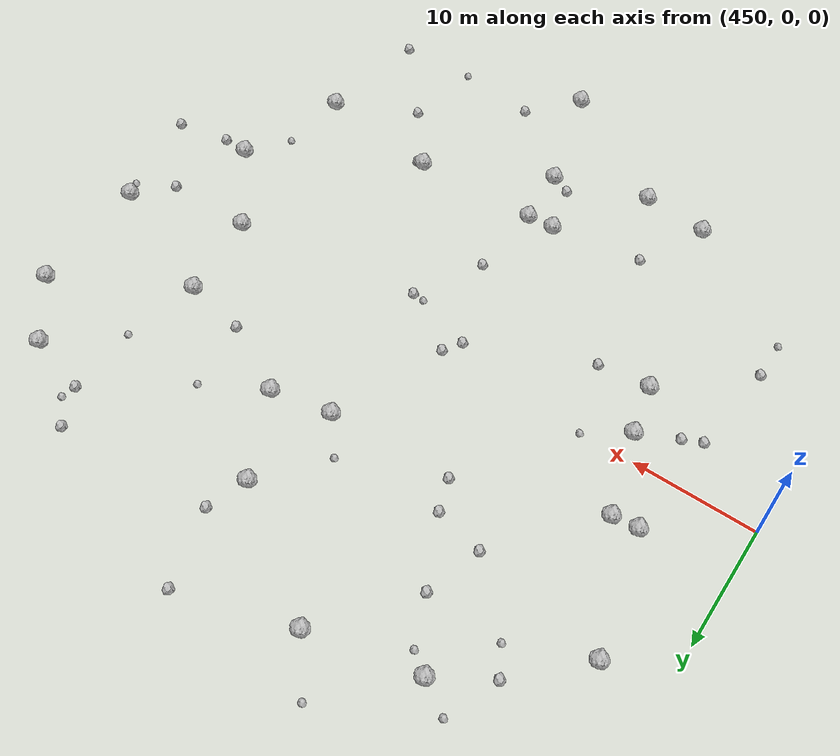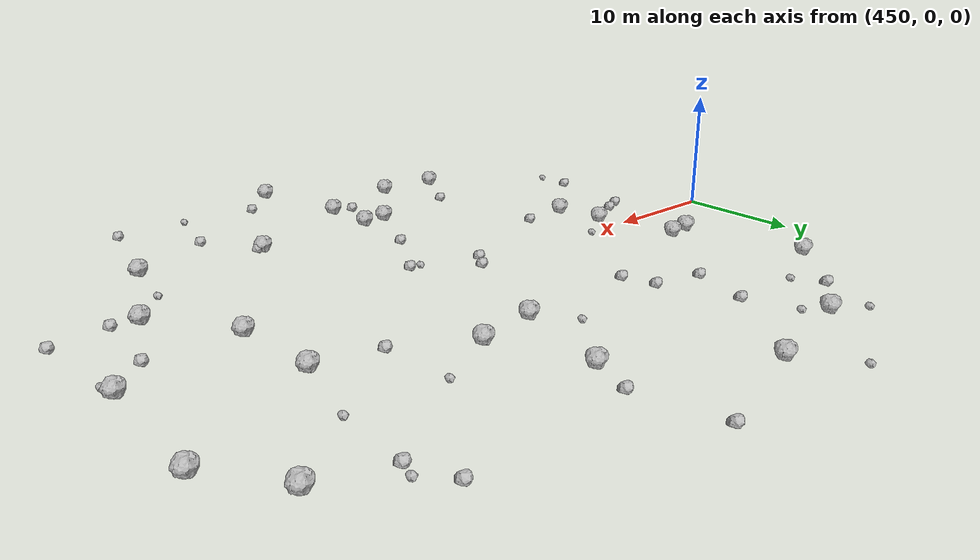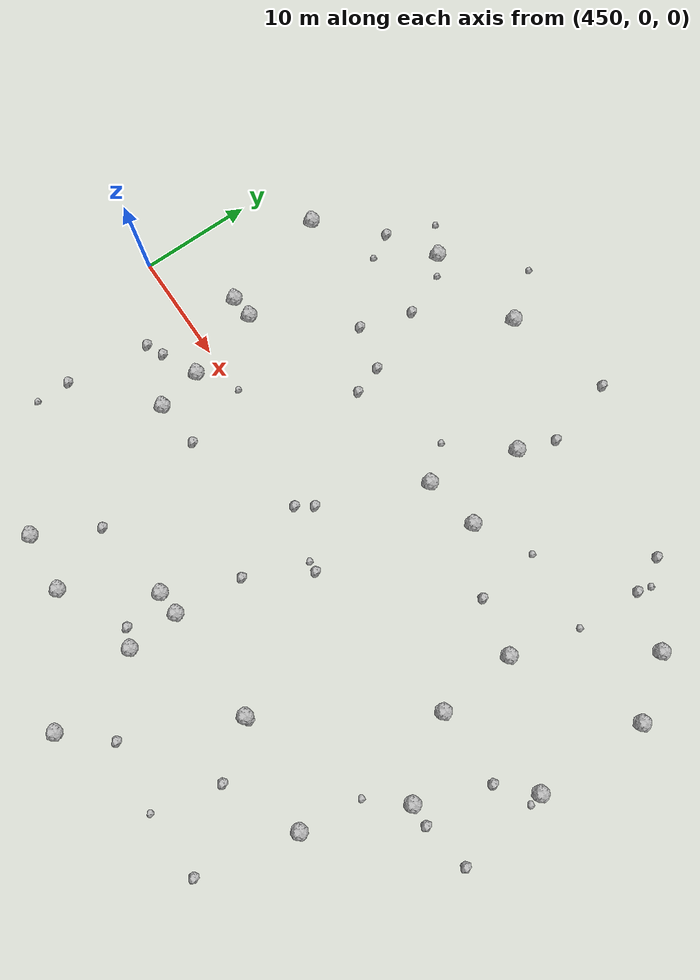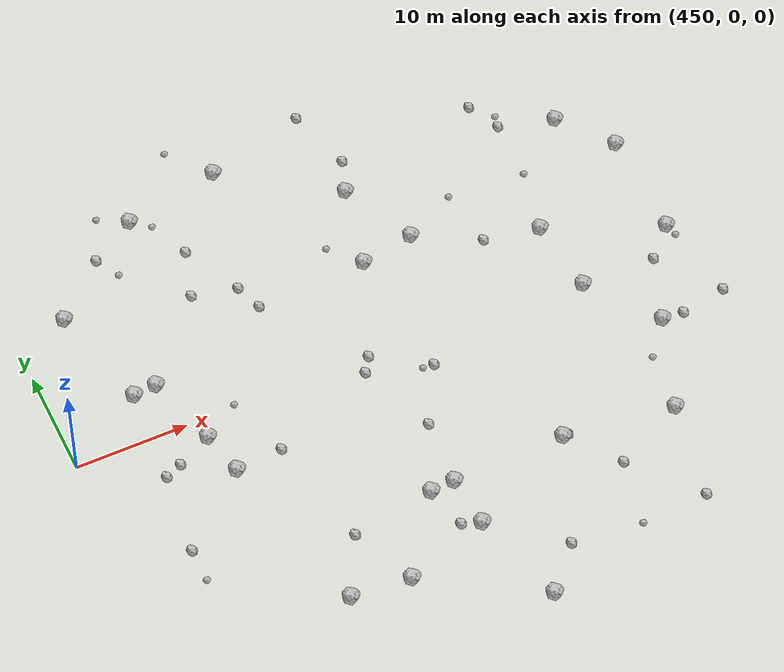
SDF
<sdf version="1.6">
 <world name="default">
  <include><uri>model://sun</uri></include>
  <model name="rock1_12_3">
   <include><uri>model://rock1</uri><pose>496.8498329236435 -1.098154168145161 0.5 0 0 0</pose></include>
  </model>
  <model name="rock1_12_4">
   <include><uri>model://rock1</uri><pose>470.5740790670287 -21.796627405200724 0.5 0 0 0</pose></include>
  </model>
  <model name="rock1_12_5">
   <include><uri>model://rock1</uri><pose>496.2592589146927 5.974734048994897 0.5 0 0 0</pose></include>
  </model>
  <model name="rock1_12_6">
   <include><uri>model://rock1</uri><pose>480.66613955887345 9.11756951327503 0.5 0 0 0</pose></include>
  </model>
  <model name="rock1_12_7">
   <include><uri>model://rock1</uri><pose>461.10730615813736 -2.020681326262899 0.5 0 0 0</pose></include>
  </model>
  <model name="rock1_12_8">
   <include><uri>model://rock1</uri><pose>463.93261727752025 21.897514054493875 0.5 0 0 0</pose></include>
  </model>
  <model name="rock1_12_9">
   <include><uri>model://rock1</uri><pose>506.68827080973284 11.63813732154614 0.5 0 0 0</pose></include>
  </model>
  <model name="rock1_12_10">
   <include><uri>model://rock1</uri><pose>482.5463915404503 16.967853246727536 0.5 0 0 0</pose></include>
  </model>
  <model name="rock1_12_11">
   <include><uri>model://rock1</uri><pose>457.14679341720415 4.53128792546886 0.5 0 0 0</pose></include>
  </model>
  <model name="rock1_12_12">
   <include><uri>model://rock1</uri><pose>480.42176683638957 -27.94905440583402 0.5 0 0 0</pose></include>
  </model>
  <model name="rock1_12_13">
   <include><uri>model://rock1</uri><pose>478.10730576289393 -19.401205620615137 0.5 0 0 0</pose></include>
  </model>
  <model name="rock1_12_14">
   <include><uri>model://rock1</uri><pose>475.6339059328807 -14.891657793510086 0.5 0 0 0</pose></include>
  </model>
  <model name="rock1_12_15">
   <include><uri>model://rock1</uri><pose>472.7795322004337 23.844470520529427 0.5 0 0 0</pose></include>
  </model>
  <model name="rock1_12_16">
   <include><uri>model://rock1</uri><pose>501.3177873661272 -7.325172165256031 0.5 0 0 0</pose></include>
  </model>
  <model name="rock1_12_17">
   <include><uri>model://rock1</uri><pose>461.97464763190305 -6.079396892622217 0.5 0 0 0</pose></include>
  </model>
  <model name="rock1_12_18">
   <include><uri>model://rock1</uri><pose>459.22348367817295 4.725753088052301 0.5 0 0 0</pose></include>
  </model>
  <model name="rock1_12_19">
   <include><uri>model://rock1</uri><pose>497.95016534301595 -15.913543781146139 0.5 0 0 0</pose></include>
  </model>
  <model name="rock1_12_20">
   <include><uri>model://rock1</uri><pose>477.8222062871473 -14.745886462393658 0.5 0 0 0</pose></include>
  </model>
  <model name="rock1_12_21">
   <include><uri>model://rock1</uri><pose>465.32701666329626 -21.335014440416806 0.5 0 0 0</pose></include>
  </model>
  <model name="rock1_12_22">
   <include><uri>model://rock1</uri><pose>503.07279276956575 16.49458532255631 0.5 0 0 0</pose></include>
  </model>
  <model name="rock1_12_23">
   <include><uri>model://rock1</uri><pose>506.4362302701383 1.5634169274523693 0.5 0 0 0</pose></include>
  </model>
  <model name="rock1_12_24">
   <include><uri>model://rock1</uri><pose>454.7709349203382 14.409304670896958 0.5 0 0 0</pose></include>
  </model>
  <model name="rock1_12_25">
   <include><uri>model://rock1</uri><pose>488.0312176362722 -14.574851151482356 0.5 0 0 0</pose></include>
  </model>
  <model name="rock1_12_26">
   <include><uri>model://rock1</uri><pose>485.6405547116409 10.043387213861962 0.5 0 0 0</pose></include>
  </model>
  <model name="rock2_12_0">
   <include><uri>model://rock2</uri><pose>491.18052173756803 7.009901336234378 0.3 0 0 0</pose></include>
  </model>
  <model name="rock2_12_1">
   <include><uri>model://rock2</uri><pose>457.90610246080047 -3.519593974940811 0.3 0 0 0</pose></include>
  </model>
  <model name="rock2_12_2">
   <include><uri>model://rock2</uri><pose>466.14122606918954 -5.664931470423429 0.3 0 0 0</pose></include>
  </model>
  <model name="rock2_12_3">
   <include><uri>model://rock2</uri><pose>507.5583257289317 -6.620870912963298 0.3 0 0 0</pose></include>
  </model>
  <model name="rock2_12_4">
   <include><uri>model://rock2</uri><pose>503.68577248821845 -1.1192333837718778 0.3 0 0 0</pose></include>
  </model>
  <model name="rock2_12_5">
   <include><uri>model://rock2</uri><pose>483.8144809689699 -24.229854526338386 0.3 0 0 0</pose></include>
  </model>
  <model name="rock2_12_6">
   <include><uri>model://rock2</uri><pose>491.4010529119355 -18.953888181091386 0.3 0 0 0</pose></include>
  </model>
  <model name="rock2_12_7">
   <include><uri>model://rock2</uri><pose>498.0441952436945 18.005591617289532 0.3 0 0 0</pose></include>
  </model>
  <model name="rock2_12_8">
   <include><uri>model://rock2</uri><pose>465.62896077526125 12.239672772514673 0.3 0 0 0</pose></include>
  </model>
  <model name="rock2_12_9">
   <include><uri>model://rock2</uri><pose>469.6231255190793 11.305851968978793 0.3 0 0 0</pose></include>
  </model>
  <model name="rock2_12_10">
   <include><uri>model://rock2</uri><pose>476.46278829871045 -18.702473169061193 0.3 0 0 0</pose></include>
  </model>
  <model name="rock2_12_11">
   <include><uri>model://rock2</uri><pose>488.48863426717435 -14.465982165382236 0.3 0 0 0</pose></include>
  </model>
  <model name="rock2_12_12">
   <include><uri>model://rock2</uri><pose>503.27212657748566 -7.390394631266336 0.3 0 0 0</pose></include>
  </model>
  <model name="rock2_12_13">
   <include><uri>model://rock2</uri><pose>483.70147128696726 20.30904584255748 0.3 0 0 0</pose></include>
  </model>
  <model name="rock2_12_14">
   <include><uri>model://rock2</uri><pose>476.750450799692 -0.109701597257164 0.3 0 0 0</pose></include>
  </model>
  <model name="rock2_12_15">
   <include><uri>model://rock2</uri><pose>496.1194745047058 -24.69378393329106 0.3 0 0 0</pose></include>
  </model>
  <model name="rock2_12_16">
   <include><uri>model://rock2</uri><pose>481.44821293805296 -3.2279921379422447 0.3 0 0 0</pose></include>
  </model>
  <model name="rock2_12_17">
   <include><uri>model://rock2</uri><pose>478.364111030341 -8.60357535489877 0.3 0 0 0</pose></include>
  </model>
  <model name="rock2_12_18">
   <include><uri>model://rock2</uri><pose>496.6716106437628 21.141371868852303 0.3 0 0 0</pose></include>
  </model>
  <model name="rock2_12_19">
   <include><uri>model://rock2</uri><pose>475.7907349079043 -1.5473351791654402 0.3 0 0 0</pose></include>
  </model>
  <model name="rock2_12_20">
   <include><uri>model://rock2</uri><pose>467.0529602561226 16.84332888900046 0.3 0 0 0</pose></include>
  </model>
  <model name="rock2_12_21">
   <include><uri>model://rock2</uri><pose>456.3768035581749 -4.186589694916158 0.3 0 0 0</pose></include>
  </model>
  <model name="rock2_12_22">
   <include><uri>model://rock2</uri><pose>470.4671833331852 8.702727445574645 0.3 0 0 0</pose></include>
  </model>
  <model name="rock2_12_23">
   <include><uri>model://rock2</uri><pose>459.63936686221086 19.265754533419198 0.3 0 0 0</pose></include>
  </model>
  <model name="rock2_12_24">
   <include><uri>model://rock2</uri><pose>468.13656267554893 -15.981038102080596 0.3 0 0 0</pose></include>
  </model>
  <model name="rock2_12_25">
   <include><uri>model://rock2</uri><pose>482.05457670279515 26.600396899456662 0.3 0 0 0</pose></include>
  </model>
  <model name="rock2_12_26">
   <include><uri>model://rock2</uri><pose>455.4233328030423 -11.714119055526307 0.3 0 0 0</pose></include>
  </model>
  <model name="rock3_12_0">
   <include><uri>model://rock3</uri><pose>506.69254980624044 0.40855494099409384 0.2 0 0 0</pose></include>
  </model>
  <model name="rock3_12_1">
   <include><uri>model://rock3</uri><pose>480.44737770321746 -3.181545594900161 0.2 0 0 0</pose></include>
  </model>
  <model name="rock3_12_2">
   <include><uri>model://rock3</uri><pose>490.06456878233513 -24.99813921089057 0.2 0 0 0</pose></include>
  </model>
  <model name="rock3_12_3">
   <include><uri>model://rock3</uri><pose>497.7223570573735 12.16149821535732 0.2 0 0 0</pose></include>
  </model>
  <model name="rock3_12_4">
   <include><uri>model://rock3</uri><pose>460.8421801642014 16.993392091491458 0.2 0 0 0</pose></include>
  </model>
  <model name="rock3_12_5">
   <include><uri>model://rock3</uri><pose>490.5280174445867 12.634932474184666 0.2 0 0 0</pose></include>
  </model>
  <model name="rock3_12_6">
   <include><uri>model://rock3</uri><pose>469.7019736923246 27.805210929658003 0.2 0 0 0</pose></include>
  </model>
  <model name="rock3_12_7">
   <include><uri>model://rock3</uri><pose>498.6608870243606 -10.465723886241797 0.2 0 0 0</pose></include>
  </model>
  <model name="rock3_12_8">
   <include><uri>model://rock3</uri><pose>455.39918974719376 -14.833239197108918 0.2 0 0 0</pose></include>
  </model>
  <model name="rock3_12_9">
   <include><uri>model://rock3</uri><pose>465.50477612431433 20.67744801656037 0.2 0 0 0</pose></include>
  </model>
  <model name="rock3_12_10">
   <include><uri>model://rock3</uri><pose>498.3511871317561 19.174829724518595 0.2 0 0 0</pose></include>
  </model>
  <model name="rock3_12_11">
   <include><uri>model://rock3</uri><pose>464.3810364920219 0.16156064772401635 0.2 0 0 0</pose></include>
  </model>
  <model name="rock3_12_12">
   <include><uri>model://rock3</uri><pose>478.31735270415174 11.944430349447778 0.2 0 0 0</pose></include>
  </model>
  <model name="rock3_12_13">
   <include><uri>model://rock3</uri><pose>461.3597449962381 23.464474729913462 0.2 0 0 0</pose></include>
  </model>
 </world>
</sdf>
